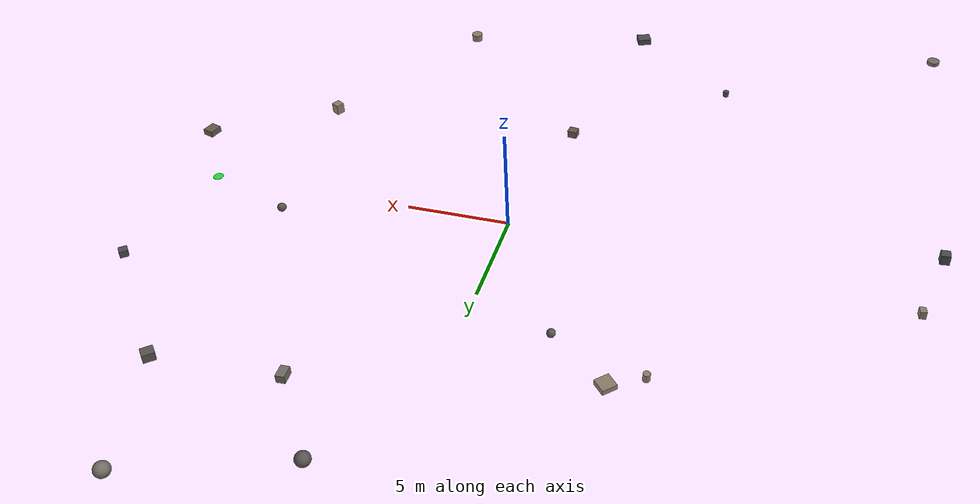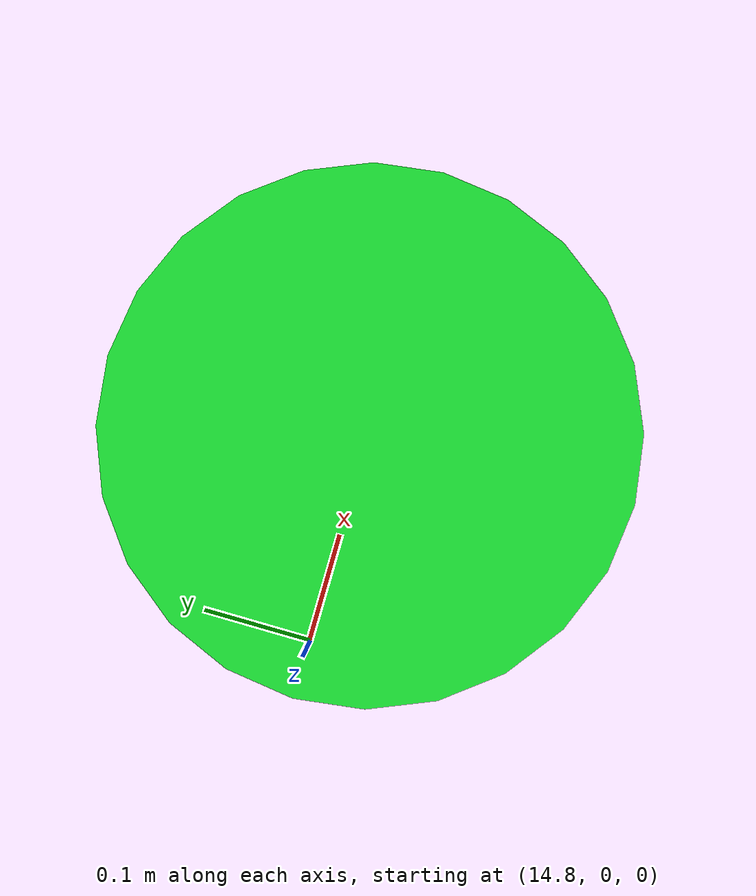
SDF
<sdf version="1.7">
 <world name="offroad_sparse">
  <include><uri>model://sun</uri></include>
  <model name="goal_marker">
   <static>true</static>
   <pose>15.000 0.000 0.010 0.0000 0.0000 0.0000</pose>
   <link name="link">
    <visual name="v0">
     <geometry><cylinder><radius>0.250</radius><length>0.020</length></cylinder></geometry>
     <material>
      <ambient>0.10 0.90 0.20 1</ambient>
      <diffuse>0.10 0.90 0.20 1</diffuse>
      <specular>0.02 0.02 0.02 1</specular>
     </material>
    </visual>
   </link>
  </model>
  <model name="rock_0">
   <static>true</static>
   <pose>6.064 11.549 0.000 0.0000 0.0000 -1.5389</pose>
   <link name="link">
    <collision name="c0">
     <pose>0.000 0.000 0.195 0 0 0</pose>
     <geometry><box><size>0.611 0.401 0.391</size></box></geometry>
    </collision>
    <visual name="v0">
     <pose>0.000 0.000 0.195 0 0 0</pose>
     <geometry><box><size>0.611 0.401 0.391</size></box></geometry>
     <material>
      <ambient>0.45 0.43 0.40 1</ambient>
      <diffuse>0.45 0.43 0.40 1</diffuse>
      <specular>0.02 0.02 0.02 1</specular>
     </material>
    </visual>
   </link>
  </model>
  <model name="rock_1">
   <static>true</static>
   <pose>-19.916 -2.185 0.000 0.0000 0.0000 1.6480</pose>
   <link name="link">
    <collision name="c0">
     <pose>0.000 0.000 0.255 0 0 0</pose>
     <geometry><box><size>0.425 0.439 0.511</size></box></geometry>
    </collision>
    <visual name="v0">
     <pose>0.000 0.000 0.255 0 0 0</pose>
     <geometry><box><size>0.425 0.439 0.511</size></box></geometry>
     <material>
      <ambient>0.30 0.30 0.32 1</ambient>
      <diffuse>0.30 0.30 0.32 1</diffuse>
      <specular>0.02 0.02 0.02 1</specular>
     </material>
    </visual>
   </link>
  </model>
  <model name="rock_2">
   <static>true</static>
   <pose>-18.982 1.656 0.000 0.0000 0.0000 -2.9494</pose>
   <link name="link">
    <collision name="c0">
     <pose>0.000 0.000 0.199 0 0 0</pose>
     <geometry><box><size>0.296 0.344 0.399</size></box></geometry>
    </collision>
    <visual name="v0">
     <pose>0.000 0.000 0.199 0 0 0</pose>
     <geometry><box><size>0.296 0.344 0.399</size></box></geometry>
     <material>
      <ambient>0.55 0.50 0.42 1</ambient>
      <diffuse>0.55 0.50 0.42 1</diffuse>
      <specular>0.02 0.02 0.02 1</specular>
     </material>
    </visual>
   </link>
  </model>
  <model name="rock_3">
   <static>true</static>
   <pose>10.548 17.567 0.000 0.0000 0.0000 0.1736</pose>
   <link name="link">
    <collision name="c0">
     <pose>0.000 0.000 0.189 0 0 0</pose>
     <geometry><sphere><radius>0.343</radius></sphere></geometry>
    </collision>
    <visual name="v0">
     <pose>0.000 0.000 0.189 0 0 0</pose>
     <geometry><sphere><radius>0.343</radius></sphere></geometry>
     <material>
      <ambient>0.45 0.43 0.40 1</ambient>
      <diffuse>0.45 0.43 0.40 1</diffuse>
      <specular>0.02 0.02 0.02 1</specular>
     </material>
    </visual>
   </link>
  </model>
  <model name="rock_4">
   <static>true</static>
   <pose>17.060 -3.353 0.000 0.0000 0.0000 2.8415</pose>
   <link name="link">
    <collision name="c0">
     <pose>0.000 0.000 0.154 0 0 0</pose>
     <geometry><box><size>0.555 0.638 0.308</size></box></geometry>
    </collision>
    <visual name="v0">
     <pose>0.000 0.000 0.154 0 0 0</pose>
     <geometry><box><size>0.555 0.638 0.308</size></box></geometry>
     <material>
      <ambient>0.40 0.36 0.30 1</ambient>
      <diffuse>0.40 0.36 0.30 1</diffuse>
      <specular>0.02 0.02 0.02 1</specular>
     </material>
    </visual>
   </link>
  </model>
  <model name="rock_5">
   <static>true</static>
   <pose>-6.692 8.859 0.000 0.0000 0.0000 -2.3820</pose>
   <link name="link">
    <collision name="c0">
     <pose>0.000 0.000 0.124 0 0 0</pose>
     <geometry><box><size>0.697 0.715 0.249</size></box></geometry>
    </collision>
    <visual name="v0">
     <pose>0.000 0.000 0.124 0 0 0</pose>
     <geometry><box><size>0.697 0.715 0.249</size></box></geometry>
     <material>
      <ambient>0.55 0.50 0.42 1</ambient>
      <diffuse>0.55 0.50 0.42 1</diffuse>
      <specular>0.02 0.02 0.02 1</specular>
     </material>
    </visual>
   </link>
  </model>
  <model name="rock_6">
   <static>true</static>
   <pose>3.503 15.299 0.000 0.0000 0.0000 -1.2355</pose>
   <link name="link">
    <collision name="c0">
     <pose>0.000 0.000 0.181 0 0 0</pose>
     <geometry><sphere><radius>0.330</radius></sphere></geometry>
    </collision>
    <visual name="v0">
     <pose>0.000 0.000 0.181 0 0 0</pose>
     <geometry><sphere><radius>0.330</radius></sphere></geometry>
     <material>
      <ambient>0.35 0.33 0.31 1</ambient>
      <diffuse>0.35 0.33 0.31 1</diffuse>
      <specular>0.02 0.02 0.02 1</specular>
     </material>
    </visual>
   </link>
  </model>
  <model name="rock_7">
   <static>true</static>
   <pose>-3.828 6.590 0.000 0.0000 0.0000 1.5314</pose>
   <link name="link">
    <collision name="c0">
     <pose>0.000 0.000 0.109 0 0 0</pose>
     <geometry><sphere><radius>0.199</radius></sphere></geometry>
    </collision>
    <visual name="v0">
     <pose>0.000 0.000 0.109 0 0 0</pose>
     <geometry><sphere><radius>0.199</radius></sphere></geometry>
     <material>
      <ambient>0.35 0.33 0.31 1</ambient>
      <diffuse>0.35 0.33 0.31 1</diffuse>
      <specular>0.02 0.02 0.02 1</specular>
     </material>
    </visual>
   </link>
  </model>
  <model name="rock_8">
   <static>true</static>
   <pose>6.550 -15.683 0.000 0.0000 0.0000 -2.5983</pose>
   <link name="link">
    <collision name="c0">
     <pose>0.000 0.000 0.192 0 0 0</pose>
     <geometry><cylinder><radius>0.283</radius><length>0.383</length></cylinder></geometry>
    </collision>
    <visual name="v0">
     <pose>0.000 0.000 0.192 0 0 0</pose>
     <geometry><cylinder><radius>0.283</radius><length>0.383</length></cylinder></geometry>
     <material>
      <ambient>0.55 0.50 0.42 1</ambient>
      <diffuse>0.55 0.50 0.42 1</diffuse>
      <specular>0.02 0.02 0.02 1</specular>
     </material>
    </visual>
   </link>
  </model>
  <model name="rock_9">
   <static>true</static>
   <pose>-1.227 -7.659 0.000 0.0000 0.0000 1.4625</pose>
   <link name="link">
    <collision name="c0">
     <pose>0.000 0.000 0.186 0 0 0</pose>
     <geometry><box><size>0.427 0.473 0.373</size></box></geometry>
    </collision>
    <visual name="v0">
     <pose>0.000 0.000 0.186 0 0 0</pose>
     <geometry><box><size>0.427 0.473 0.373</size></box></geometry>
     <material>
      <ambient>0.40 0.36 0.30 1</ambient>
      <diffuse>0.40 0.36 0.30 1</diffuse>
      <specular>0.02 0.02 0.02 1</specular>
     </material>
    </visual>
   </link>
  </model>
  <model name="rock_10">
   <static>true</static>
   <pose>10.821 1.585 0.000 0.0000 0.0000 3.0290</pose>
   <link name="link">
    <collision name="c0">
     <pose>0.000 0.000 0.115 0 0 0</pose>
     <geometry><sphere><radius>0.210</radius></sphere></geometry>
    </collision>
    <visual name="v0">
     <pose>0.000 0.000 0.115 0 0 0</pose>
     <geometry><sphere><radius>0.210</radius></sphere></geometry>
     <material>
      <ambient>0.35 0.33 0.31 1</ambient>
      <diffuse>0.35 0.33 0.31 1</diffuse>
      <specular>0.02 0.02 0.02 1</specular>
     </material>
    </visual>
   </link>
  </model>
  <model name="rock_11">
   <static>true</static>
   <pose>16.390 6.369 0.000 0.0000 0.0000 -0.9219</pose>
   <link name="link">
    <collision name="c0">
     <pose>0.000 0.000 0.165 0 0 0</pose>
     <geometry><box><size>0.405 0.391 0.330</size></box></geometry>
    </collision>
    <visual name="v0">
     <pose>0.000 0.000 0.165 0 0 0</pose>
     <geometry><box><size>0.405 0.391 0.330</size></box></geometry>
     <material>
      <ambient>0.30 0.30 0.32 1</ambient>
      <diffuse>0.30 0.30 0.32 1</diffuse>
      <specular>0.02 0.02 0.02 1</specular>
     </material>
    </visual>
   </link>
  </model>
  <model name="rock_12">
   <static>true</static>
   <pose>-2.956 -17.755 0.000 0.0000 0.0000 1.9424</pose>
   <link name="link">
    <collision name="c0">
     <pose>0.000 0.000 0.161 0 0 0</pose>
     <geometry><box><size>0.636 0.713 0.322</size></box></geometry>
    </collision>
    <visual name="v0">
     <pose>0.000 0.000 0.161 0 0 0</pose>
     <geometry><box><size>0.636 0.713 0.322</size></box></geometry>
     <material>
      <ambient>0.30 0.30 0.32 1</ambient>
      <diffuse>0.30 0.30 0.32 1</diffuse>
      <specular>0.02 0.02 0.02 1</specular>
     </material>
    </visual>
   </link>
  </model>
  <model name="rock_13">
   <static>true</static>
   <pose>11.458 -6.755 0.000 0.0000 0.0000 -0.5377</pose>
   <link name="link">
    <collision name="c0">
     <pose>0.000 0.000 0.264 0 0 0</pose>
     <geometry><box><size>0.436 0.419 0.528</size></box></geometry>
    </collision>
    <visual name="v0">
     <pose>0.000 0.000 0.264 0 0 0</pose>
     <geometry><box><size>0.436 0.419 0.528</size></box></geometry>
     <material>
      <ambient>0.55 0.50 0.42 1</ambient>
      <diffuse>0.55 0.50 0.42 1</diffuse>
      <specular>0.02 0.02 0.02 1</specular>
     </material>
    </visual>
   </link>
  </model>
  <model name="rock_14">
   <static>true</static>
   <pose>11.938 11.884 0.000 0.0000 0.0000 2.2683</pose>
   <link name="link">
    <collision name="c0">
     <pose>0.000 0.000 0.208 0 0 0</pose>
     <geometry><box><size>0.498 0.543 0.415</size></box></geometry>
    </collision>
    <visual name="v0">
     <pose>0.000 0.000 0.208 0 0 0</pose>
     <geometry><box><size>0.498 0.543 0.415</size></box></geometry>
     <material>
      <ambient>0.35 0.33 0.31 1</ambient>
      <diffuse>0.35 0.33 0.31 1</diffuse>
      <specular>0.02 0.02 0.02 1</specular>
     </material>
    </visual>
   </link>
  </model>
  <model name="rock_15">
   <static>true</static>
   <pose>-19.332 -19.418 0.000 0.0000 0.0000 -2.6186</pose>
   <link name="link">
    <collision name="c0">
     <pose>0.000 0.000 0.096 0 0 0</pose>
     <geometry><cylinder><radius>0.337</radius><length>0.192</length></cylinder></geometry>
    </collision>
    <visual name="v0">
     <pose>0.000 0.000 0.096 0 0 0</pose>
     <geometry><cylinder><radius>0.337</radius><length>0.192</length></cylinder></geometry>
     <material>
      <ambient>0.45 0.43 0.40 1</ambient>
      <diffuse>0.45 0.43 0.40 1</diffuse>
      <specular>0.02 0.02 0.02 1</specular>
     </material>
    </visual>
   </link>
  </model>
  <model name="rock_16">
   <static>true</static>
   <pose>-8.389 -13.301 0.000 0.0000 0.0000 -1.9817</pose>
   <link name="link">
    <collision name="c0">
     <pose>0.000 0.000 0.136 0 0 0</pose>
     <geometry><cylinder><radius>0.150</radius><length>0.272</length></cylinder></geometry>
    </collision>
    <visual name="v0">
     <pose>0.000 0.000 0.136 0 0 0</pose>
     <geometry><cylinder><radius>0.150</radius><length>0.272</length></cylinder></geometry>
     <material>
      <ambient>0.30 0.30 0.32 1</ambient>
      <diffuse>0.30 0.30 0.32 1</diffuse>
      <specular>0.02 0.02 0.02 1</specular>
     </material>
    </visual>
   </link>
  </model>
  <model name="rock_17">
   <static>true</static>
   <pose>-8.220 8.105 0.000 0.0000 0.0000 0.9312</pose>
   <link name="link">
    <collision name="c0">
     <pose>0.000 0.000 0.188 0 0 0</pose>
     <geometry><cylinder><radius>0.163</radius><length>0.375</length></cylinder></geometry>
    </collision>
    <visual name="v0">
     <pose>0.000 0.000 0.188 0 0 0</pose>
     <geometry><cylinder><radius>0.163</radius><length>0.375</length></cylinder></geometry>
     <material>
      <ambient>0.55 0.50 0.42 1</ambient>
      <diffuse>0.55 0.50 0.42 1</diffuse>
      <specular>0.02 0.02 0.02 1</specular>
     </material>
    </visual>
   </link>
  </model>
 </world>
</sdf>
